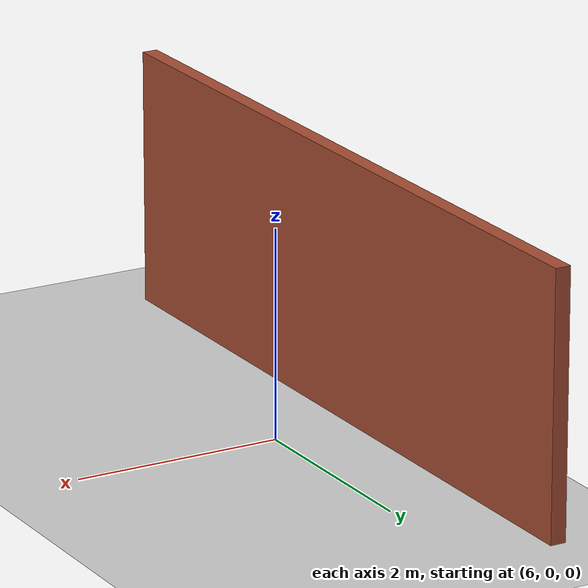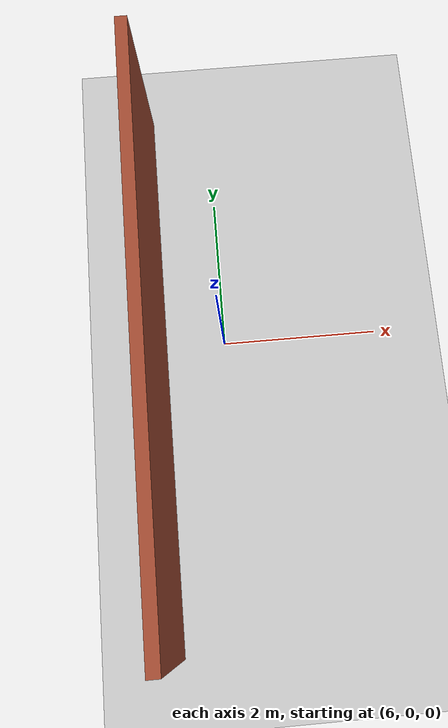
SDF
<sdf version="1.6">
 <world name="default">
  <model name="ground_plane">
   <static>1</static>
   <link name="link">
    <collision name="collision">
     <geometry><plane><normal>0 0 1</normal><size>100 100</size></plane></geometry>
     <surface>
      <contact><collide_bitmask>65535</collide_bitmask></contact>
      <friction><ode><mu>100</mu><mu2>50</mu2></ode></friction>
     </surface>
    </collision>
    <visual name="visual">
     <cast_shadows>0</cast_shadows>
     <geometry><plane><normal>0 0 1</normal><size>100 100</size></plane></geometry>
     <material>
      <script><uri>file://media/materials/scripts/gazebo.material</uri><name>Gazebo/Grey</name></script>
     </material>
    </visual>
   </link>
  </model>
  <model name="building">
   <link name="Wall_8">
    <pose>4.58864 -1.18247 0 0 0 -1.5708</pose>
    <visual name="Wall_8_Visual">
     <pose>0 0 1.25 0 -0 0</pose>
     <geometry><box><size>7.303 0.15 2.5</size></box></geometry>
     <material>
      <script><uri>file://media/materials/scripts/gazebo.material</uri><name>Gazebo/Bricks</name></script>
      <ambient>0.435294 0.796078 0.67451 1</ambient>
      <shader type="pixel"/>
      <diffuse>1 1 1 1</diffuse>
      <specular>0.2 0.2 0.2 1</specular>
      <emissive>0 0 0 1</emissive>
     </material>
     <meta><layer>0</layer></meta>
    </visual>
    <collision name="Wall_8_Collision">
     <pose>0 0 1.25 0 -0 0</pose>
     <geometry><box><size>7.303 0.15 2.5</size></box></geometry>
     <surface>
      <friction>
       <ode><mu>1</mu><mu2>1</mu2><fdir1>0 0 0</fdir1><slip1>0</slip1><slip2>0</slip2></ode>
       <torsional>
        <coefficient>1</coefficient>
        <patch_radius>0</patch_radius>
        <surface_radius>0</surface_radius>
        <use_patch_radius>1</use_patch_radius>
        <ode><slip>0</slip></ode>
       </torsional>
      </friction>
      <bounce><restitution_coefficient>0</restitution_coefficient><threshold>1e+06</threshold></bounce>
      <contact>
       <collide_without_contact>0</collide_without_contact>
       <collide_without_contact_bitmask>1</collide_without_contact_bitmask>
       <collide_bitmask>1</collide_bitmask>
       <ode>
        <soft_cfm>0</soft_cfm>
        <soft_erp>0.2</soft_erp>
        <kp>1e+13</kp>
        <kd>1</kd>
        <max_vel>0.01</max_vel>
        <min_depth>0</min_depth>
       </ode>
       <bullet>
        <split_impulse>1</split_impulse>
        <split_impulse_penetration_threshold>-0.01</split_impulse_penetration_threshold>
        <soft_cfm>0</soft_cfm>
        <soft_erp>0.2</soft_erp>
        <kp>1e+13</kp>
        <kd>1</kd>
       </bullet>
      </contact>
     </surface>
    </collision>
   </link>
   <static>1</static>
   <pose>0.55726 0.89542 0 0 -0 0</pose>
  </model>
 </world>
</sdf>
